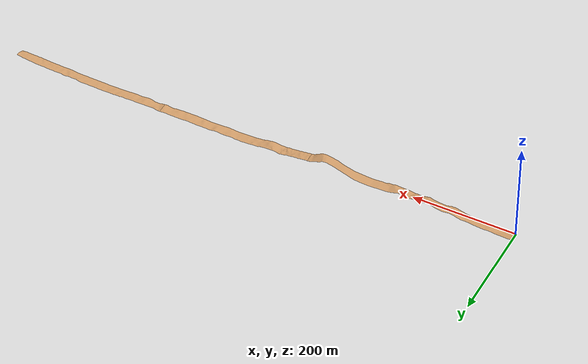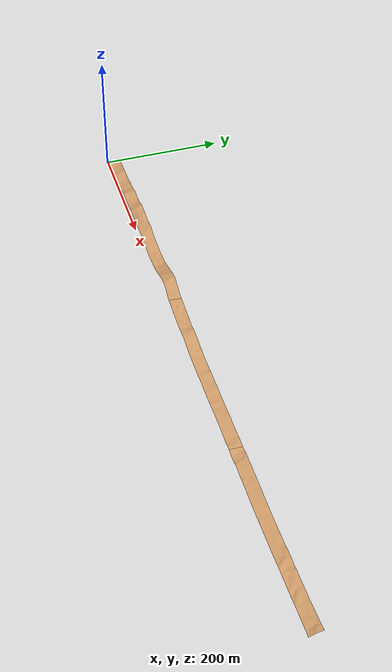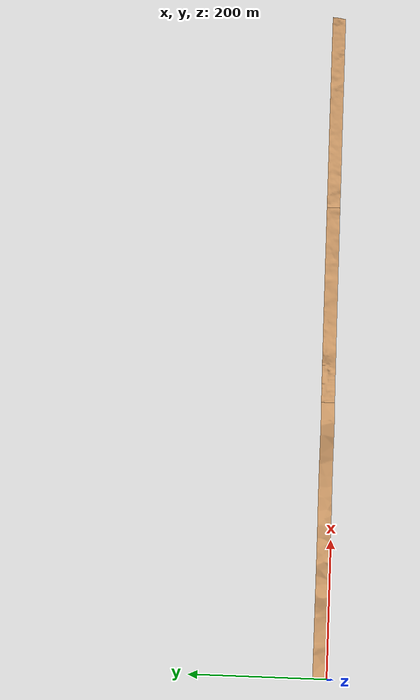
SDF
<sdf version='1.6'>
  <world name='MSL_Gale_DEM_Mosaic_1m_v3_1000x20_I1_R1_X_22350-23349_Y_31578-31597_cropped'>
    <light name='sun' type='directional'>
      <cast_shadows>1</cast_shadows>
      <pose frame=''>0 0 10 0 -0 0</pose>
      <diffuse>0.8 0.8 0.8 1</diffuse>
      <specular>0.2 0.2 0.2 1</specular>
      <attenuation>
        <range>1000</range>
        <constant>0.9</constant>
        <linear>0.01</linear>
        <quadratic>0.001</quadratic>
      </attenuation>
      <direction>-0.5 0.1 -0.9</direction>
    </light>
    <gravity>0.000000 0.000000 -9.810000</gravity>
    <magnetic_field>0.000006 0.000023 -0.000042</magnetic_field>
    <atmosphere type='adiabatic'/>
    <physics name='default_physics' default='0' type='ode'>
      <max_step_size>0.001</max_step_size>
      <real_time_factor>1</real_time_factor>
      <real_time_update_rate>1000</real_time_update_rate>
      <ode>
        <solver>
          <type>world</type> <!-- world/quick-->
          <iters>10000</iters>
        </solver>
      </ode>
    </physics>
    <scene>
      <ambient>0.4 0.4 0.4 1</ambient>
      <background>0.7 0.7 0.7 1</background>
      <shadows>1</shadows>
    </scene>
    <spherical_coordinates>
      <surface_model>EARTH_WGS84</surface_model>
      <latitude_deg>0</latitude_deg>
      <longitude_deg>0</longitude_deg>
      <elevation>0</elevation>
      <heading_deg>0</heading_deg>
    </spherical_coordinates>
    <model name='MSL_Gale_DEM_Mosaic_1m_v3_1000x20_I1_R1_X_22350-23349_Y_31578-31597_crop1'>
      <link name='link_0'>
        <inertial>
          <mass>1</mass>
          <inertia>
            <ixx>0.166667</ixx>
            <ixy>0</ixy>
            <ixz>0</ixz>
            <iyy>0.166667</iyy>
            <iyz>0</iyz>
            <izz>0.166667</izz>
          </inertia>
          <pose frame=''>0 0 0 0 -0 0</pose>
        </inertial>
        <pose frame=''>0 0 0 0 -0 0</pose>
        <gravity>1</gravity>
        <self_collide>0</self_collide>
        <kinematic>0</kinematic>
        <enable_wind>0</enable_wind>
        <visual name='visual'>
          <pose frame=''>0 0 0 0 -0 0</pose>
          <geometry>
            <mesh>
              <uri>model://MSL_Gale_DEM_Mosaic_1m_v3_1000x20_I1_R1_X_22350-23349_Y_31578-31597_cropped_export/MSL_Gale_DEM_Mosaic_1m_v3_1000x20_I1_R1_X_22350-23349_Y_31578-31597_crop1.stl</uri>
              <scale>1 1 1</scale>
            </mesh>
          </geometry>
          <material>
            <lighting>1</lighting>
            <script>
              <uri>file://media/materials/scripts/gazebo.material</uri>
              <name>Gazebo/Grey</name>
            </script>
            <shader type='pixel'>
              <normal_map>__default__</normal_map>
            </shader>
            <ambient>0.8 0.6 0.4 1</ambient>
            <diffuse>0.9 0.9 0.9 1</diffuse>
            <specular>0.01 0.01 0.01 1</specular>
            <emissive>0 0 0 1</emissive>
          </material>
          <transparency>0</transparency>
          <cast_shadows>1</cast_shadows>
        </visual>
        <collision name='collision'>
          <laser_retro>0</laser_retro>
          <max_contacts>10</max_contacts>
          <pose frame=''>0 0 0 0 -0 0</pose>
          <geometry>
            <mesh>
              <uri>model://MSL_Gale_DEM_Mosaic_1m_v3_1000x20_I1_R1_X_22350-23349_Y_31578-31597_cropped_export/MSL_Gale_DEM_Mosaic_1m_v3_1000x20_I1_R1_X_22350-23349_Y_31578-31597_crop1.stl</uri>
              <scale>1 1 1</scale>
            </mesh>
          </geometry>
          <surface>
            <friction>
              <ode>
                <mu>0.4</mu>
                <mu2>0.4</mu2>
                <fdir1>0 0 0</fdir1>
                <slip1>0</slip1>
                <slip2>0</slip2>
              </ode>
              <torsional>
                <coefficient>1</coefficient>
                <patch_radius>0</patch_radius>
                <surface_radius>0</surface_radius>
                <use_patch_radius>1</use_patch_radius>
                <ode>
                  <slip>0</slip>
                </ode>
              </torsional>
            </friction>
            <bounce>
              <restitution_coefficient>0</restitution_coefficient>
              <threshold>1e+06</threshold>
            </bounce>
            <contact>
              <collide_without_contact>0</collide_without_contact>
              <collide_without_contact_bitmask>1</collide_without_contact_bitmask>
              <collide_bitmask>1</collide_bitmask>
              <ode>
                <soft_cfm>0</soft_cfm>
                <soft_erp>0.2</soft_erp>
                <kp>1e+13</kp>
                <kd>1</kd>
                <max_vel>0.01</max_vel>
                <min_depth>0</min_depth>
              </ode>
              <bullet>
                <split_impulse>1</split_impulse>
                <split_impulse_penetration_threshold>-0.01</split_impulse_penetration_threshold>
                <soft_cfm>0</soft_cfm>
                <soft_erp>0.2</soft_erp>
                <kp>1e+13</kp>
                <kd>1</kd>
              </bullet>
            </contact>
          </surface>
        </collision>
      </link>
      <static>1</static>
      <allow_auto_disable>1</allow_auto_disable>
      <pose frame=''>0 0 0 0 0 0</pose>
    </model>
    <model name='MSL_Gale_DEM_Mosaic_1m_v3_1000x20_I1_R1_X_22350-23349_Y_31578-31597_crop2'>
      <link name='link_0'>
        <inertial>
          <mass>1</mass>
          <inertia>
            <ixx>0.166667</ixx>
            <ixy>0</ixy>
            <ixz>0</ixz>
            <iyy>0.166667</iyy>
            <iyz>0</iyz>
            <izz>0.166667</izz>
          </inertia>
          <pose frame=''>0 0 0 0 -0 0</pose>
        </inertial>
        <pose frame=''>0 0 0 0 -0 0</pose>
        <gravity>1</gravity>
        <self_collide>0</self_collide>
        <kinematic>0</kinematic>
        <enable_wind>0</enable_wind>
        <visual name='visual'>
          <pose frame=''>0 0 0 0 -0 0</pose>
          <geometry>
            <mesh>
              <uri>model://MSL_Gale_DEM_Mosaic_1m_v3_1000x20_I1_R1_X_22350-23349_Y_31578-31597_cropped_export/MSL_Gale_DEM_Mosaic_1m_v3_1000x20_I1_R1_X_22350-23349_Y_31578-31597_crop2.stl</uri>
              <scale>1 1 1</scale>
            </mesh>
          </geometry>
          <material>
            <lighting>1</lighting>
            <script>
              <uri>file://media/materials/scripts/gazebo.material</uri>
              <name>Gazebo/Grey</name>
            </script>
            <shader type='pixel'>
              <normal_map>__default__</normal_map>
            </shader>
            <ambient>0.8 0.6 0.4 1</ambient>
            <diffuse>0.9 0.9 0.9 1</diffuse>
            <specular>0.01 0.01 0.01 1</specular>
            <emissive>0 0 0 1</emissive>
          </material>
          <transparency>0</transparency>
          <cast_shadows>1</cast_shadows>
        </visual>
        <collision name='collision'>
          <laser_retro>0</laser_retro>
          <max_contacts>10</max_contacts>
          <pose frame=''>0 0 0 0 -0 0</pose>
          <geometry>
            <mesh>
              <uri>model://MSL_Gale_DEM_Mosaic_1m_v3_1000x20_I1_R1_X_22350-23349_Y_31578-31597_cropped_export/MSL_Gale_DEM_Mosaic_1m_v3_1000x20_I1_R1_X_22350-23349_Y_31578-31597_crop2.stl</uri>
              <scale>1 1 1</scale>
            </mesh>
          </geometry>
          <surface>
            <friction>
              <ode>
                <mu>0.4</mu>
                <mu2>0.4</mu2>
                <fdir1>0 0 0</fdir1>
                <slip1>0</slip1>
                <slip2>0</slip2>
              </ode>
              <torsional>
                <coefficient>1</coefficient>
                <patch_radius>0</patch_radius>
                <surface_radius>0</surface_radius>
                <use_patch_radius>1</use_patch_radius>
                <ode>
                  <slip>0</slip>
                </ode>
              </torsional>
            </friction>
            <bounce>
              <restitution_coefficient>0</restitution_coefficient>
              <threshold>1e+06</threshold>
            </bounce>
            <contact>
              <collide_without_contact>0</collide_without_contact>
              <collide_without_contact_bitmask>1</collide_without_contact_bitmask>
              <collide_bitmask>1</collide_bitmask>
              <ode>
                <soft_cfm>0</soft_cfm>
                <soft_erp>0.2</soft_erp>
                <kp>1e+13</kp>
                <kd>1</kd>
                <max_vel>0.01</max_vel>
                <min_depth>0</min_depth>
              </ode>
              <bullet>
                <split_impulse>1</split_impulse>
                <split_impulse_penetration_threshold>-0.01</split_impulse_penetration_threshold>
                <soft_cfm>0</soft_cfm>
                <soft_erp>0.2</soft_erp>
                <kp>1e+13</kp>
                <kd>1</kd>
              </bullet>
            </contact>
          </surface>
        </collision>
      </link>
      <static>1</static>
      <allow_auto_disable>1</allow_auto_disable>
      <pose frame=''>0 0 0 0 0 0</pose>
    </model>
    <model name='MSL_Gale_DEM_Mosaic_1m_v3_1000x20_I1_R1_X_22350-23349_Y_31578-31597_crop3'>
      <link name='link_0'>
        <inertial>
          <mass>1</mass>
          <inertia>
            <ixx>0.166667</ixx>
            <ixy>0</ixy>
            <ixz>0</ixz>
            <iyy>0.166667</iyy>
            <iyz>0</iyz>
            <izz>0.166667</izz>
          </inertia>
          <pose frame=''>0 0 0 0 -0 0</pose>
        </inertial>
        <pose frame=''>0 0 0 0 -0 0</pose>
        <gravity>1</gravity>
        <self_collide>0</self_collide>
        <kinematic>0</kinematic>
        <enable_wind>0</enable_wind>
        <visual name='visual'>
          <pose frame=''>0 0 0 0 -0 0</pose>
          <geometry>
            <mesh>
              <uri>model://MSL_Gale_DEM_Mosaic_1m_v3_1000x20_I1_R1_X_22350-23349_Y_31578-31597_cropped_export/MSL_Gale_DEM_Mosaic_1m_v3_1000x20_I1_R1_X_22350-23349_Y_31578-31597_crop3.stl</uri>
              <scale>1 1 1</scale>
            </mesh>
          </geometry>
          <material>
            <lighting>1</lighting>
            <script>
              <uri>file://media/materials/scripts/gazebo.material</uri>
              <name>Gazebo/Grey</name>
            </script>
            <shader type='pixel'>
              <normal_map>__default__</normal_map>
            </shader>
            <ambient>0.8 0.6 0.4 1</ambient>
            <diffuse>0.9 0.9 0.9 1</diffuse>
            <specular>0.01 0.01 0.01 1</specular>
            <emissive>0 0 0 1</emissive>
          </material>
          <transparency>0</transparency>
          <cast_shadows>1</cast_shadows>
        </visual>
        <collision name='collision'>
          <laser_retro>0</laser_retro>
          <max_contacts>10</max_contacts>
          <pose frame=''>0 0 0 0 -0 0</pose>
          <geometry>
            <mesh>
              <uri>model://MSL_Gale_DEM_Mosaic_1m_v3_1000x20_I1_R1_X_22350-23349_Y_31578-31597_cropped_export/MSL_Gale_DEM_Mosaic_1m_v3_1000x20_I1_R1_X_22350-23349_Y_31578-31597_crop3.stl</uri>
              <scale>1 1 1</scale>
            </mesh>
          </geometry>
          <surface>
            <friction>
              <ode>
                <mu>0.4</mu>
                <mu2>0.4</mu2>
                <fdir1>0 0 0</fdir1>
                <slip1>0</slip1>
                <slip2>0</slip2>
              </ode>
              <torsional>
                <coefficient>1</coefficient>
                <patch_radius>0</patch_radius>
                <surface_radius>0</surface_radius>
                <use_patch_radius>1</use_patch_radius>
                <ode>
                  <slip>0</slip>
                </ode>
              </torsional>
            </friction>
            <bounce>
              <restitution_coefficient>0</restitution_coefficient>
              <threshold>1e+06</threshold>
            </bounce>
            <contact>
              <collide_without_contact>0</collide_without_contact>
              <collide_without_contact_bitmask>1</collide_without_contact_bitmask>
              <collide_bitmask>1</collide_bitmask>
              <ode>
                <soft_cfm>0</soft_cfm>
                <soft_erp>0.2</soft_erp>
                <kp>1e+13</kp>
                <kd>1</kd>
                <max_vel>0.01</max_vel>
                <min_depth>0</min_depth>
              </ode>
              <bullet>
                <split_impulse>1</split_impulse>
                <split_impulse_penetration_threshold>-0.01</split_impulse_penetration_threshold>
                <soft_cfm>0</soft_cfm>
                <soft_erp>0.2</soft_erp>
                <kp>1e+13</kp>
                <kd>1</kd>
              </bullet>
            </contact>
          </surface>
        </collision>
      </link>
      <static>1</static>
      <allow_auto_disable>1</allow_auto_disable>
      <pose frame=''>0 0 0 0 0 0</pose>
    </model>
    <gui fullscreen='0'>
      <camera name='user_camera'>
        <pose frame=''>-24.8768 -152.32 155.383 0 0.737796 1.17897</pose>
        <view_controller>orbit</view_controller>
        <projection_type>perspective</projection_type>
      </camera>
    </gui>
  </world>
</sdf>
